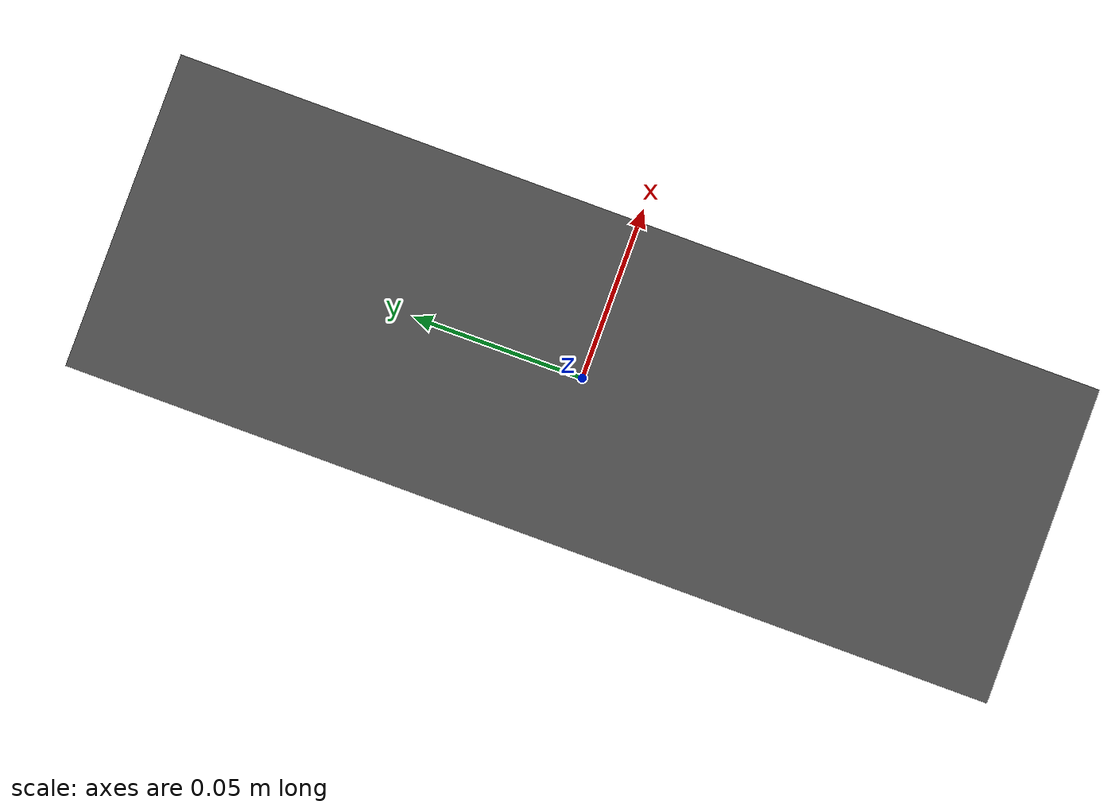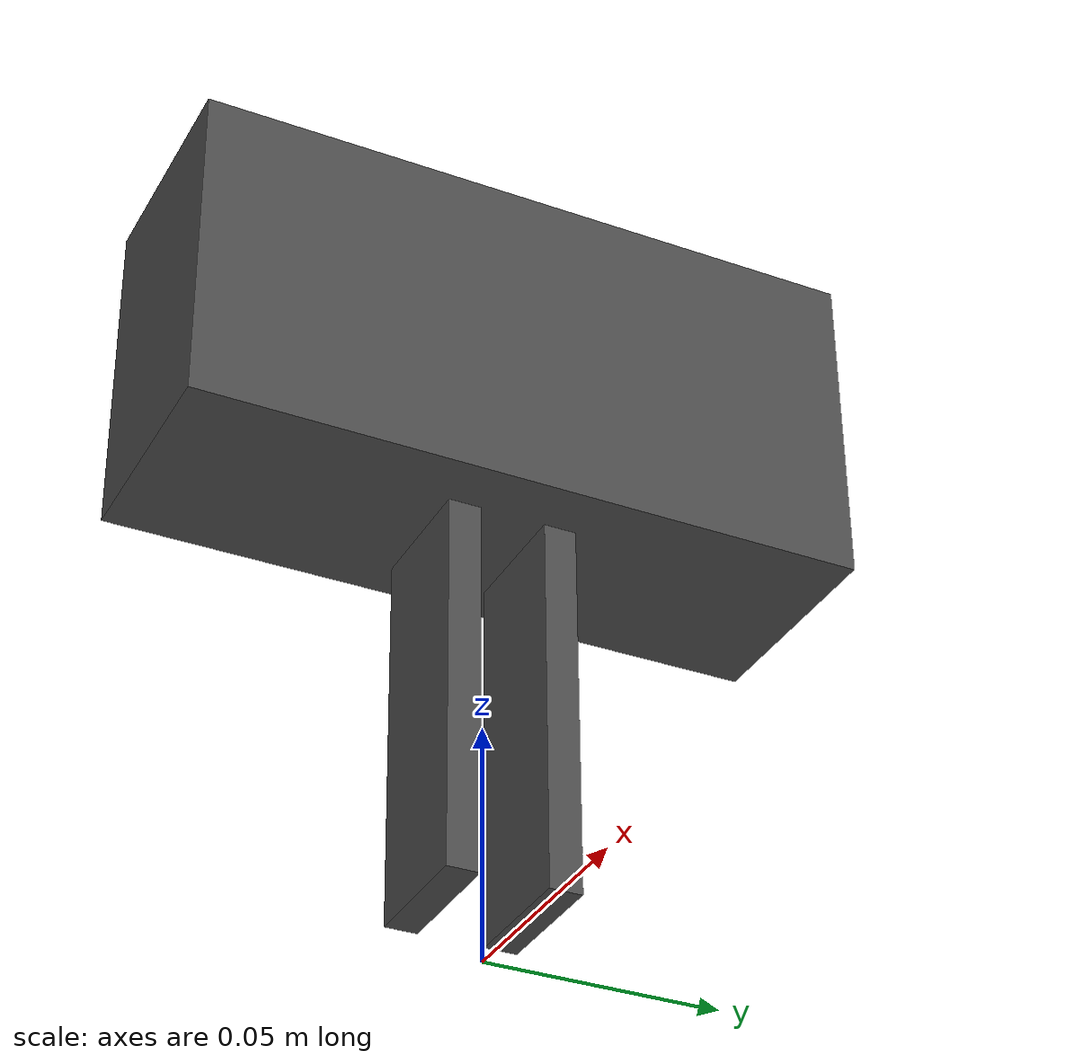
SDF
<?xml version="1.0"?>
<sdf version="1.7">
  <model name="simple_gripper">
    <!-- Pose X_WG of the gripper model frame G in the world frame W. -->
    <pose>0.0 0.0 0.08 -1.57 0 1.57</pose>
    <joint name="weld_base" type="fixed">
      <parent>world</parent>
      <child>y_translate_link</child>
    </joint>
    <link name="y_translate_link">
      <inertial>
        <mass>0.0001</mass>
        <inertia>
          <ixx>0.0001</ixx>
          <ixy>0</ixy>
          <ixz>0</ixz>
          <iyy>0.0001</iyy>
          <iyz>0</iyz>
          <izz>0.0001</izz>
        </inertia>
      </inertial>
    </link>
    <joint name="translate_joint" type="prismatic">
      <parent>y_translate_link</parent>
      <child>body</child>
      <axis>
        <xyz expressed_in="__model__">0 -1 0</xyz>
        <!-- Drake attaches an actuator to all joints with a non-zero effort
             limit. We do want an actuator for this joint. -->
        <limit>
          <effort>500</effort>
        </limit>
      </axis>
    </joint>
    <link name="body">
      <pose>0 -0.049133 0 0 0 0</pose>
      <inertial>
        <mass>0.988882</mass>
        <inertia>
          <ixx>0.162992</ixx>
          <ixy>0</ixy>
          <ixz>0</ixz>
          <iyy>0.162992</iyy>
          <iyz>0</iyz>
          <izz>0.164814</izz>
        </inertia>
      </inertial>
      <visual name="visual">
        <geometry>
          <box>
            <size>0.146 0.0725 0.049521</size>
          </box>
        </geometry>
        <material>
          <diffuse>0.3 0.3 0.3 0.9</diffuse>
        </material>
      </visual>
    </link>
    <link name="left_finger">
      <!-- Each finger is positioned along the x-axis such that at q=0 the pads
      of each finger barely touch each other. See notes at the top of this
      file. -->
      <pose>-0.0105 0.029 0 0 0 0</pose>
      <inertial>
        <mass>0.05</mass>
        <inertia>
          <ixx>0.16</ixx>
          <ixy>0</ixy>
          <ixz>0</ixz>
          <iyy>0.16</iyy>
          <iyz>0</iyz>
          <izz>0.16</izz>
        </inertia>
      </inertial>
      <visual name="visual">
        <geometry>
          <box>
            <size>0.007 0.081 0.028</size>
          </box>
        </geometry>
        <material>
          <diffuse>0.3 0.3 0.3 0.9</diffuse>
        </material>
      </visual>
    </link>
    <link name="right_finger">
      <!-- Each finger is positioned along the x-axis such that at q=0 the pads
      of each finger barely touch each other. See notes at the top of this
      file. -->
      <pose>0.0105 0.029 0 0 0 0</pose>
      <inertial>
        <mass>0.05</mass>
        <inertia>
          <ixx>0.16</ixx>
          <ixy>0</ixy>
          <ixz>0</ixz>
          <iyy>0.16</iyy>
          <iyz>0</iyz>
          <izz>0.16</izz>
        </inertia>
      </inertial>
      <visual name="visual">
        <geometry>
          <box>
            <size>0.007 0.081 0.028</size>
          </box>
        </geometry>
        <material>
          <diffuse>0.3 0.3 0.3 0.9</diffuse>
        </material>
      </visual>
    </link>
    <joint name="left_slider" type="prismatic">
      <parent>body</parent>
      <child>left_finger</child>
      <axis>
        <xyz>1 0 0</xyz>
        <!-- Drake attaches an actuator to all joints with a non-zero effort
             limit. We do want an actuator for this joint. -->
        <limit>
          <effort>500</effort>
        </limit>
      </axis>
    </joint>
    <joint name="right_slider" type="prismatic">
      <parent>body</parent>
      <child>right_finger</child>
      <axis>
        <xyz>1 0 0</xyz>
        <!-- Drake attaches an actuator to all joints with a non-zero effort
             limit. We do NOT want an actuator for this joint. -->
        <limit>
          <effort>0</effort>
        </limit>
      </axis>
    </joint>
  </model>
</sdf>
